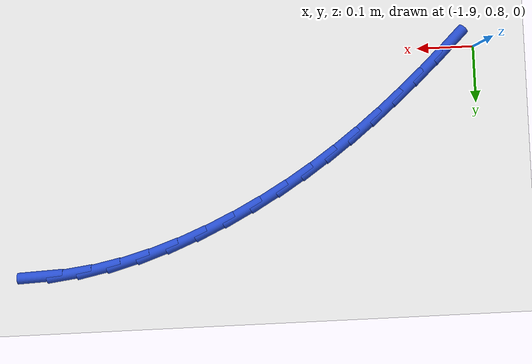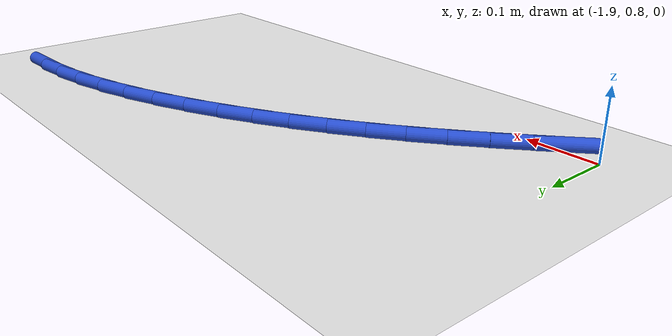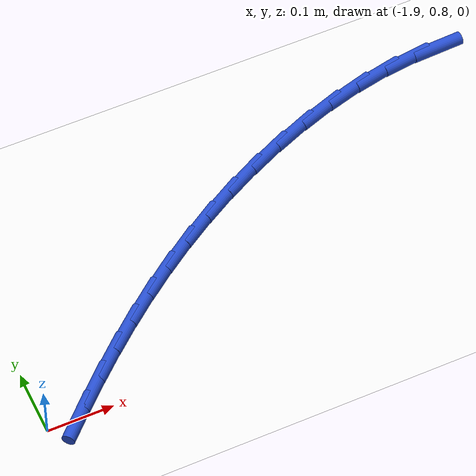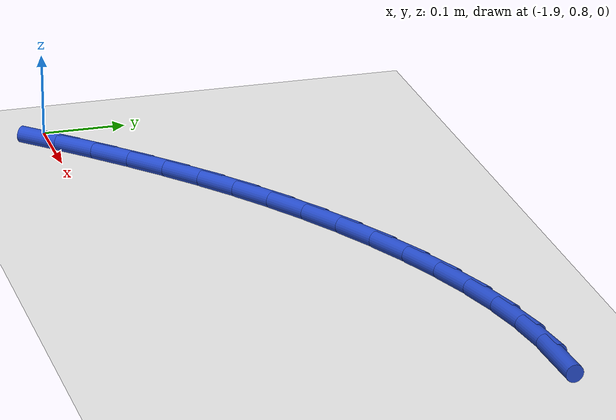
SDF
<sdf version="1.6">
 <world name="default">
  <model name="ground_plane">
   <static>1</static>
   <link name="link">
    <collision name="collision">
     <geometry><plane><normal>0 0 1</normal><size>100 100</size></plane></geometry>
     <surface><friction><ode><mu>100</mu><mu2>50</mu2></ode></friction></surface>
    </collision>
    <visual name="visual">
     <cast_shadows>0</cast_shadows>
     <geometry><plane><normal>0 0 1</normal><size>100 100</size></plane></geometry>
     <material>
      <script><uri>file://media/materials/scripts/gazebo.material</uri><name>Gazebo/WhiteGlow</name></script>
     </material>
    </visual>
   </link>
  </model>
  <model name="line">
   <link name="link_33">
    <pose>-1.1134830353685994 1.1714657674600226 0.01 0 1.57 0.04205901651553839</pose>
    <collision name="collision">
     <geometry><cylinder><radius>0.01</radius><length>0.08</length></cylinder></geometry>
    </collision>
    <visual name="visual">
     <material>
      <script><name>Gazebo/Blue</name><uri>file://media/materials/scripts/gazebo.material</uri></script>
     </material>
     <geometry><cylinder><radius>0.01</radius><length>0.08</length></cylinder></geometry>
    </visual>
   </link>
   <link name="link_34">
    <pose>-1.1649277341885818 1.1693007772778354 0.01 0 1.57 0.12867278126783555</pose>
    <collision name="collision">
     <geometry><cylinder><radius>0.01</radius><length>0.08</length></cylinder></geometry>
    </collision>
    <visual name="visual">
     <material>
      <script><name>Gazebo/Blue</name><uri>file://media/materials/scripts/gazebo.material</uri></script>
     </material>
     <geometry><cylinder><radius>0.01</radius><length>0.08</length></cylinder></geometry>
    </visual>
   </link>
   <link name="link_35">
    <pose>-1.2170180881203472 1.162560928924062 0.01 0 1.57 0.20496557960515524</pose>
    <collision name="collision">
     <geometry><cylinder><radius>0.01</radius><length>0.08</length></cylinder></geometry>
    </collision>
    <visual name="visual">
     <material>
      <script><name>Gazebo/Blue</name><uri>file://media/materials/scripts/gazebo.material</uri></script>
     </material>
     <geometry><cylinder><radius>0.01</radius><length>0.08</length></cylinder></geometry>
    </visual>
   </link>
   <link name="link_36">
    <pose>-1.2693800412035632 1.1516756690751866 0.01 0 1.57 0.2724508416582119</pose>
    <collision name="collision">
     <geometry><cylinder><radius>0.01</radius><length>0.08</length></cylinder></geometry>
    </collision>
    <visual name="visual">
     <material>
      <script><name>Gazebo/Blue</name><uri>file://media/materials/scripts/gazebo.material</uri></script>
     </material>
     <geometry><cylinder><radius>0.01</radius><length>0.08</length></cylinder></geometry>
    </visual>
   </link>
   <link name="link_37">
    <pose>-1.3216395374778966 1.1370744444076926 0.01 0 1.57 0.33260374641564483</pose>
    <collision name="collision">
     <geometry><cylinder><radius>0.01</radius><length>0.08</length></cylinder></geometry>
    </collision>
    <visual name="visual">
     <material>
      <script><name>Gazebo/Blue</name><uri>file://media/materials/scripts/gazebo.material</uri></script>
     </material>
     <geometry><cylinder><radius>0.01</radius><length>0.08</length></cylinder></geometry>
    </visual>
   </link>
   <link name="link_38">
    <pose>-1.3734225209830155 1.119186701598063 0.01 0 1.57 0.38678429948891213</pose>
    <collision name="collision">
     <geometry><cylinder><radius>0.01</radius><length>0.08</length></cylinder></geometry>
    </collision>
    <visual name="visual">
     <material>
      <script><name>Gazebo/Blue</name><uri>file://media/materials/scripts/gazebo.material</uri></script>
     </material>
     <geometry><cylinder><radius>0.01</radius><length>0.08</length></cylinder></geometry>
    </visual>
   </link>
   <link name="link_39">
    <pose>-1.4243549357585865 1.098441887322782 0.01 0 1.57 0.43622185587417267</pose>
    <collision name="collision">
     <geometry><cylinder><radius>0.01</radius><length>0.08</length></cylinder></geometry>
    </collision>
    <visual name="visual">
     <material>
      <script><name>Gazebo/Blue</name><uri>file://media/materials/scripts/gazebo.material</uri></script>
     </material>
     <geometry><cylinder><radius>0.01</radius><length>0.08</length></cylinder></geometry>
    </visual>
   </link>
   <link name="link_40">
    <pose>-1.4740627258442762 1.0752694482583331 0.01 0 1.57 0.4820337593431167</pose>
    <collision name="collision">
     <geometry><cylinder><radius>0.01</radius><length>0.08</length></cylinder></geometry>
    </collision>
    <visual name="visual">
     <material>
      <script><name>Gazebo/Blue</name><uri>file://media/materials/scripts/gazebo.material</uri></script>
     </material>
     <geometry><cylinder><radius>0.01</radius><length>0.08</length></cylinder></geometry>
    </visual>
   </link>
   <link name="link_41">
    <pose>-1.5221718352797513 1.050098831081199 0.01 0 1.57 0.525299183485095</pose>
    <collision name="collision">
     <geometry><cylinder><radius>0.01</radius><length>0.08</length></cylinder></geometry>
    </collision>
    <visual name="visual">
     <material>
      <script><name>Gazebo/Blue</name><uri>file://media/materials/scripts/gazebo.material</uri></script>
     </material>
     <geometry><cylinder><radius>0.01</radius><length>0.08</length></cylinder></geometry>
    </visual>
   </link>
   <link name="link_42">
    <pose>-1.5683399505622238 1.0233388814957987 0.01 0 1.57 0.5670247604580007</pose>
    <collision name="collision">
     <geometry><cylinder><radius>0.01</radius><length>0.08</length></cylinder></geometry>
    </collision>
    <visual name="visual">
     <material>
      <script><name>Gazebo/Blue</name><uri>file://media/materials/scripts/gazebo.material</uri></script>
     </material>
     <geometry><cylinder><radius>0.01</radius><length>0.08</length></cylinder></geometry>
    </visual>
   </link>
   <link name="link_43">
    <pose>-1.6125916366626472 0.9951603397234208 0.01 0 1.57 0.6069740563410259</pose>
    <collision name="collision">
     <geometry><cylinder><radius>0.01</radius><length>0.08</length></cylinder></geometry>
    </collision>
    <visual name="visual">
     <material>
      <script><name>Gazebo/Blue</name><uri>file://media/materials/scripts/gazebo.material</uri></script>
     </material>
     <geometry><cylinder><radius>0.01</radius><length>0.08</length></cylinder></geometry>
    </visual>
   </link>
   <link name="link_44">
    <pose>-1.655187147977997 0.9655809826782465 0.01 0 1.57 0.6444682475008037</pose>
    <collision name="collision">
     <geometry><cylinder><radius>0.01</radius><length>0.08</length></cylinder></geometry>
    </collision>
    <visual name="visual">
     <material>
      <script><name>Gazebo/Blue</name><uri>file://media/materials/scripts/gazebo.material</uri></script>
     </material>
     <geometry><cylinder><radius>0.01</radius><length>0.08</length></cylinder></geometry>
    </visual>
   </link>
   <link name="link_45">
    <pose>-1.6963906220953928 0.934616067069724 0.01 0 1.57 0.678907467081339</pose>
    <collision name="collision">
     <geometry><cylinder><radius>0.01</radius><length>0.08</length></cylinder></geometry>
    </collision>
    <visual name="visual">
     <material>
      <script><name>Gazebo/Blue</name><uri>file://media/materials/scripts/gazebo.material</uri></script>
     </material>
     <geometry><cylinder><radius>0.01</radius><length>0.08</length></cylinder></geometry>
    </visual>
   </link>
   <link name="link_46">
    <pose>-1.7364661966019568 0.9022808496073024 0.01 0 1.57 0.7098032224751687</pose>
    <collision name="collision">
     <geometry><cylinder><radius>0.01</radius><length>0.08</length></cylinder></geometry>
    </collision>
    <visual name="visual">
     <material>
      <script><name>Gazebo/Blue</name><uri>file://media/materials/scripts/gazebo.material</uri></script>
     </material>
     <geometry><cylinder><radius>0.01</radius><length>0.08</length></cylinder></geometry>
    </visual>
   </link>
   <link name="link_47">
    <pose>-1.775678009084807 0.8685905870004298 0.01 0 1.57 0.736794049253981</pose>
    <collision name="collision">
     <geometry><cylinder><radius>0.01</radius><length>0.08</length></cylinder></geometry>
    </collision>
    <visual name="visual">
     <material>
      <script><name>Gazebo/Blue</name><uri>file://media/materials/scripts/gazebo.material</uri></script>
     </material>
     <geometry><cylinder><radius>0.01</radius><length>0.08</length></cylinder></geometry>
    </visual>
   </link>
   <link name="link_48">
    <pose>-1.8142901971310645 0.8335605359585556 0.01 0 1.57 0.759648993509458</pose>
    <collision name="collision">
     <geometry><cylinder><radius>0.01</radius><length>0.08</length></cylinder></geometry>
    </collision>
    <visual name="visual">
     <material>
      <script><name>Gazebo/Blue</name><uri>file://media/materials/scripts/gazebo.material</uri></script>
     </material>
     <geometry><cylinder><radius>0.01</radius><length>0.08</length></cylinder></geometry>
    </visual>
   </link>
   <link name="link_49">
    <pose>-1.8525668983278498 0.7972059531911284 0.01 0 1.57 0.7782610789507092</pose>
    <collision name="collision">
     <geometry><cylinder><radius>0.01</radius><length>0.08</length></cylinder></geometry>
    </collision>
    <visual name="visual">
     <material>
      <script><name>Gazebo/Blue</name><uri>file://media/materials/scripts/gazebo.material</uri></script>
     </material>
     <geometry><cylinder><radius>0.01</radius><length>0.08</length></cylinder></geometry>
    </visual>
   </link>
  </model>
 </world>
</sdf>
